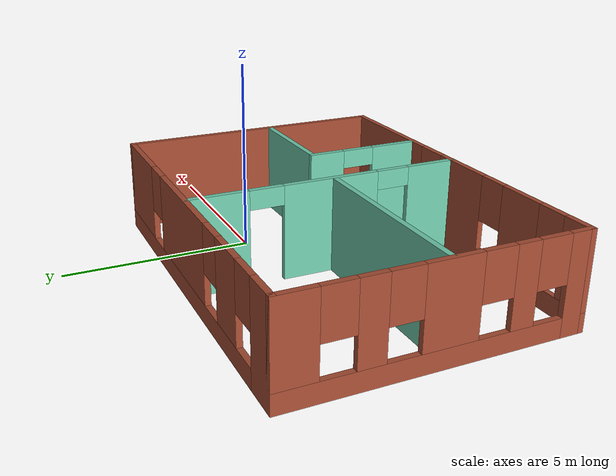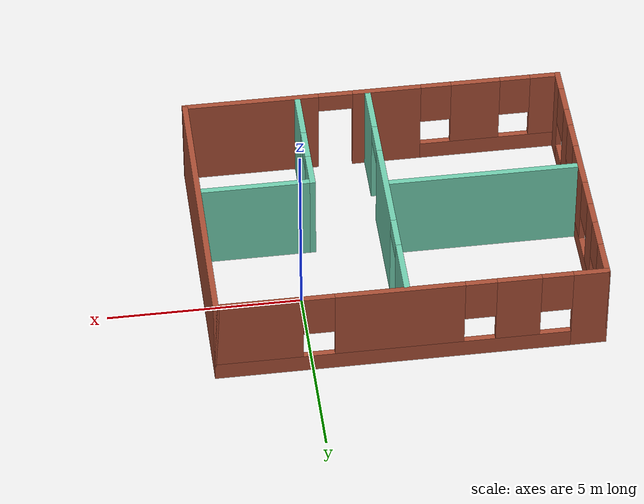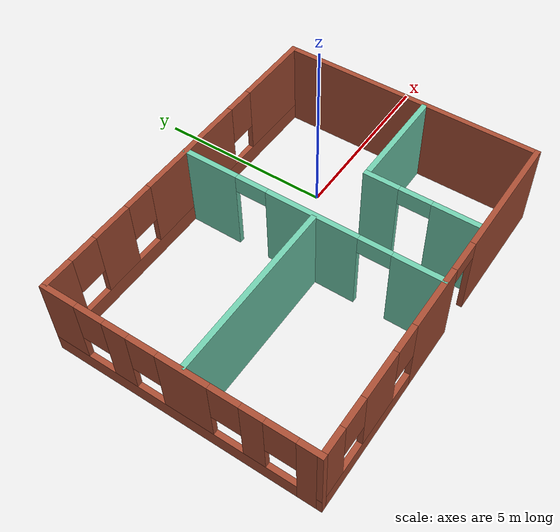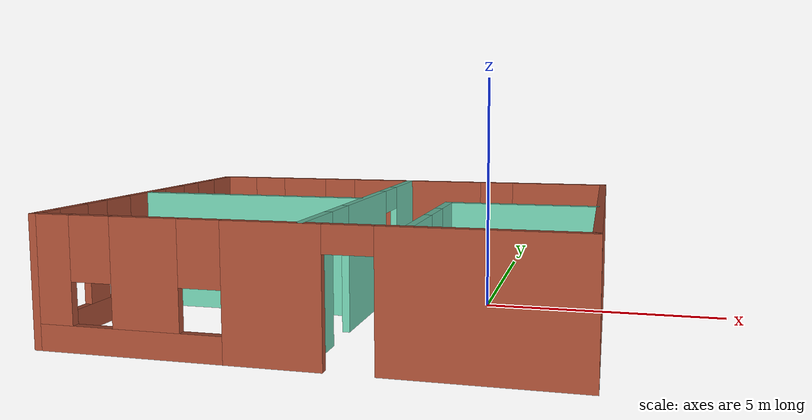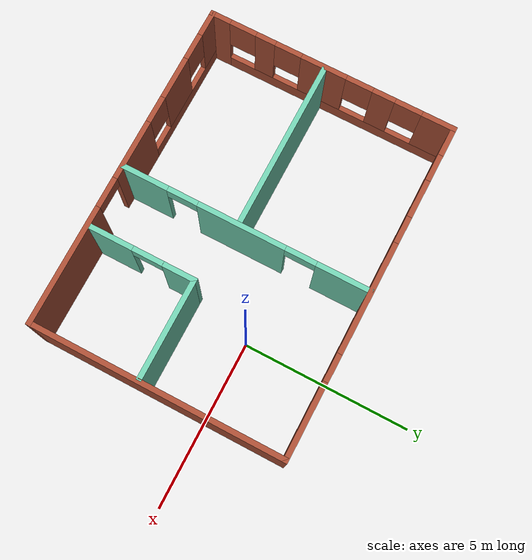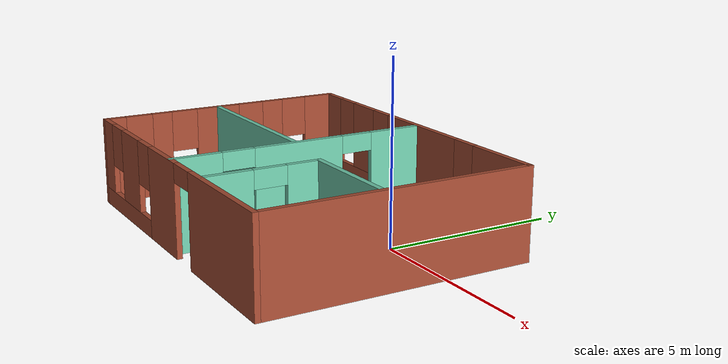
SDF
<?xml version='1.0'?>
<sdf version='1.7'>
  <model name='Untitled'>
    <pose>-2.50372 -1.28209 0 0 -0 0</pose>
    <link name='Wall_10'>
      <collision name='Wall_10_Collision'>
        <geometry>
          <box>
            <size>7.5 0.15 2.5</size>
          </box>
        </geometry>
        <pose>0 0 1.25 0 -0 0</pose>
      </collision>
      <visual name='Wall_10_Visual'>
        <pose>0 0 1.25 0 -0 0</pose>
        <geometry>
          <box>
            <size>7.5 0.15 2.5</size>
          </box>
        </geometry>
        <material>
          <script>
            <uri>file://media/materials/scripts/gazebo.material</uri>
            <name>Gazebo/Bricks</name>
          </script>
          <ambient>1 1 1 1</ambient>
        </material>
        <meta>
          <layer>0</layer>
        </meta>
      </visual>
      <pose>4.925 0 0 0 -0 -1.5708</pose>
    </link>
    <link name='Wall_11'>
      <pose>0 -3.675 0 0 -0 3.14159</pose>
      <visual name='Wall_11_Visual_0'>
        <pose>-3.21126 0 1.25 0 -0 0</pose>
        <geometry>
          <box>
            <size>3.57748 0.15 2.5</size>
          </box>
        </geometry>
        <material>
          <script>
            <uri>file://media/materials/scripts/gazebo.material</uri>
            <name>Gazebo/Bricks</name>
          </script>
          <ambient>1 1 1 1</ambient>
        </material>
        <meta>
          <layer>0</layer>
        </meta>
      </visual>
      <collision name='Wall_11_Collision_0'>
        <geometry>
          <box>
            <size>3.57748 0.15 2.5</size>
          </box>
        </geometry>
        <pose>-3.21126 0 1.25 0 -0 0</pose>
      </collision>
      <visual name='Wall_11_Visual_1'>
        <pose>0.381727 0 1.25 0 -0 0</pose>
        <geometry>
          <box>
            <size>1.80849 0.15 2.5</size>
          </box>
        </geometry>
        <material>
          <script>
            <uri>file://media/materials/scripts/gazebo.material</uri>
            <name>Gazebo/Bricks</name>
          </script>
          <ambient>1 1 1 1</ambient>
        </material>
        <meta>
          <layer>0</layer>
        </meta>
      </visual>
      <collision name='Wall_11_Collision_1'>
        <geometry>
          <box>
            <size>1.80849 0.15 2.5</size>
          </box>
        </geometry>
        <pose>0.381727 0 1.25 0 -0 0</pose>
      </collision>
      <visual name='Wall_11_Visual_2'>
        <pose>3.14299 0 0.25 0 -0 0</pose>
        <geometry>
          <box>
            <size>3.71403 0.15 0.5</size>
          </box>
        </geometry>
        <material>
          <script>
            <uri>file://media/materials/scripts/gazebo.material</uri>
            <name>Gazebo/Bricks</name>
          </script>
          <ambient>1 1 1 1</ambient>
        </material>
        <meta>
          <layer>0</layer>
        </meta>
      </visual>
      <collision name='Wall_11_Collision_2'>
        <geometry>
          <box>
            <size>3.71403 0.15 0.5</size>
          </box>
        </geometry>
        <pose>3.14299 0 0.25 0 -0 0</pose>
      </collision>
      <visual name='Wall_11_Visual_3'>
        <pose>2.73538 0 1.5 0 -0 0</pose>
        <geometry>
          <box>
            <size>1.29881 0.15 2</size>
          </box>
        </geometry>
        <material>
          <script>
            <uri>file://media/materials/scripts/gazebo.material</uri>
            <name>Gazebo/Bricks</name>
          </script>
          <ambient>1 1 1 1</ambient>
        </material>
        <meta>
          <layer>0</layer>
        </meta>
      </visual>
      <collision name='Wall_11_Collision_3'>
        <geometry>
          <box>
            <size>1.29881 0.15 2</size>
          </box>
        </geometry>
        <pose>2.73538 0 1.5 0 -0 0</pose>
      </collision>
      <visual name='Wall_11_Visual_4'>
        <pose>4.59239 0 1.5 0 -0 0</pose>
        <geometry>
          <box>
            <size>0.81522 0.15 2</size>
          </box>
        </geometry>
        <material>
          <script>
            <uri>file://media/materials/scripts/gazebo.material</uri>
            <name>Gazebo/Bricks</name>
          </script>
          <ambient>1 1 1 1</ambient>
        </material>
        <meta>
          <layer>0</layer>
        </meta>
      </visual>
      <collision name='Wall_11_Collision_4'>
        <geometry>
          <box>
            <size>0.81522 0.15 2</size>
          </box>
        </geometry>
        <pose>4.59239 0 1.5 0 -0 0</pose>
      </collision>
      <visual name='Wall_11_Visual_5'>
        <pose>1.68597 0 1.9 0 -0 0</pose>
        <geometry>
          <box>
            <size>0.8 0.15 1.2</size>
          </box>
        </geometry>
        <material>
          <script>
            <uri>file://media/materials/scripts/gazebo.material</uri>
            <name>Gazebo/Bricks</name>
          </script>
          <ambient>1 1 1 1</ambient>
        </material>
        <meta>
          <layer>0</layer>
        </meta>
      </visual>
      <collision name='Wall_11_Collision_5'>
        <geometry>
          <box>
            <size>0.8 0.15 1.2</size>
          </box>
        </geometry>
        <pose>1.68597 0 1.9 0 -0 0</pose>
      </collision>
      <visual name='Wall_11_Visual_6'>
        <pose>3.78478 0 1.9 0 -0 0</pose>
        <geometry>
          <box>
            <size>0.8 0.15 1.2</size>
          </box>
        </geometry>
        <material>
          <script>
            <uri>file://media/materials/scripts/gazebo.material</uri>
            <name>Gazebo/Bricks</name>
          </script>
          <ambient>1 1 1 1</ambient>
        </material>
        <meta>
          <layer>0</layer>
        </meta>
      </visual>
      <collision name='Wall_11_Collision_6'>
        <geometry>
          <box>
            <size>0.8 0.15 1.2</size>
          </box>
        </geometry>
        <pose>3.78478 0 1.9 0 -0 0</pose>
      </collision>
      <visual name='Wall_11_Visual_7'>
        <pose>-0.972518 0 2.25 0 -0 0</pose>
        <geometry>
          <box>
            <size>0.9 0.15 0.5</size>
          </box>
        </geometry>
        <material>
          <script>
            <uri>file://media/materials/scripts/gazebo.material</uri>
            <name>Gazebo/Bricks</name>
          </script>
          <ambient>1 1 1 1</ambient>
        </material>
        <meta>
          <layer>0</layer>
        </meta>
      </visual>
      <collision name='Wall_11_Collision_7'>
        <geometry>
          <box>
            <size>0.9 0.15 0.5</size>
          </box>
        </geometry>
        <pose>-0.972518 0 2.25 0 -0 0</pose>
      </collision>
    </link>
    <link name='Wall_12'>
      <pose>-4.925 0 0 0 -0 1.5708</pose>
      <visual name='Wall_12_Visual_0'>
        <pose>-3.42666 0 1.25 0 -0 0</pose>
        <geometry>
          <box>
            <size>0.646687 0.15 2.5</size>
          </box>
        </geometry>
        <material>
          <script>
            <uri>file://media/materials/scripts/gazebo.material</uri>
            <name>Gazebo/Bricks</name>
          </script>
          <ambient>1 1 1 1</ambient>
        </material>
        <meta>
          <layer>0</layer>
        </meta>
      </visual>
      <collision name='Wall_12_Collision_0'>
        <geometry>
          <box>
            <size>0.646687 0.15 2.5</size>
          </box>
        </geometry>
        <pose>-3.42666 0 1.25 0 -0 0</pose>
      </collision>
      <visual name='Wall_12_Visual_1'>
        <pose>0.323343 0 0.25 0 -0 0</pose>
        <geometry>
          <box>
            <size>6.85331 0.15 0.5</size>
          </box>
        </geometry>
        <material>
          <script>
            <uri>file://media/materials/scripts/gazebo.material</uri>
            <name>Gazebo/Bricks</name>
          </script>
          <ambient>1 1 1 1</ambient>
        </material>
        <meta>
          <layer>0</layer>
        </meta>
      </visual>
      <collision name='Wall_12_Collision_1'>
        <geometry>
          <box>
            <size>6.85331 0.15 0.5</size>
          </box>
        </geometry>
        <pose>0.323343 0 0.25 0 -0 0</pose>
      </collision>
      <visual name='Wall_12_Visual_2'>
        <pose>-2.00371 0 1.5 0 -0 0</pose>
        <geometry>
          <box>
            <size>0.599205 0.15 2</size>
          </box>
        </geometry>
        <material>
          <script>
            <uri>file://media/materials/scripts/gazebo.material</uri>
            <name>Gazebo/Bricks</name>
          </script>
          <ambient>1 1 1 1</ambient>
        </material>
        <meta>
          <layer>0</layer>
        </meta>
      </visual>
      <collision name='Wall_12_Collision_2'>
        <geometry>
          <box>
            <size>0.599205 0.15 2</size>
          </box>
        </geometry>
        <pose>-2.00371 0 1.5 0 -0 0</pose>
      </collision>
      <visual name='Wall_12_Visual_3'>
        <pose>-0.219724 0 1.5 0 -0 0</pose>
        <geometry>
          <box>
            <size>1.36877 0.15 2</size>
          </box>
        </geometry>
        <material>
          <script>
            <uri>file://media/materials/scripts/gazebo.material</uri>
            <name>Gazebo/Bricks</name>
          </script>
          <ambient>1 1 1 1</ambient>
        </material>
        <meta>
          <layer>0</layer>
        </meta>
      </visual>
      <collision name='Wall_12_Collision_3'>
        <geometry>
          <box>
            <size>1.36877 0.15 2</size>
          </box>
        </geometry>
        <pose>-0.219724 0 1.5 0 -0 0</pose>
      </collision>
      <visual name='Wall_12_Visual_4'>
        <pose>1.59924 0 1.5 0 -0 0</pose>
        <geometry>
          <box>
            <size>0.669165 0.15 2</size>
          </box>
        </geometry>
        <material>
          <script>
            <uri>file://media/materials/scripts/gazebo.material</uri>
            <name>Gazebo/Bricks</name>
          </script>
          <ambient>1 1 1 1</ambient>
        </material>
        <meta>
          <layer>0</layer>
        </meta>
      </visual>
      <collision name='Wall_12_Collision_4'>
        <geometry>
          <box>
            <size>0.669165 0.15 2</size>
          </box>
        </geometry>
        <pose>1.59924 0 1.5 0 -0 0</pose>
      </collision>
      <visual name='Wall_12_Visual_5'>
        <pose>3.24191 0 1.5 0 -0 0</pose>
        <geometry>
          <box>
            <size>1.01618 0.15 2</size>
          </box>
        </geometry>
        <material>
          <script>
            <uri>file://media/materials/scripts/gazebo.material</uri>
            <name>Gazebo/Bricks</name>
          </script>
          <ambient>1 1 1 1</ambient>
        </material>
        <meta>
          <layer>0</layer>
        </meta>
      </visual>
      <collision name='Wall_12_Collision_5'>
        <geometry>
          <box>
            <size>1.01618 0.15 2</size>
          </box>
        </geometry>
        <pose>3.24191 0 1.5 0 -0 0</pose>
      </collision>
      <visual name='Wall_12_Visual_6'>
        <pose>-2.70331 0 1.9 0 -0 0</pose>
        <geometry>
          <box>
            <size>0.8 0.15 1.2</size>
          </box>
        </geometry>
        <material>
          <script>
            <uri>file://media/materials/scripts/gazebo.material</uri>
            <name>Gazebo/Bricks</name>
          </script>
          <ambient>1 1 1 1</ambient>
        </material>
        <meta>
          <layer>0</layer>
        </meta>
      </visual>
      <collision name='Wall_12_Collision_6'>
        <geometry>
          <box>
            <size>0.8 0.15 1.2</size>
          </box>
        </geometry>
        <pose>-2.70331 0 1.9 0 -0 0</pose>
      </collision>
      <visual name='Wall_12_Visual_7'>
        <pose>-1.30411 0 1.9 0 -0 0</pose>
        <geometry>
          <box>
            <size>0.8 0.15 1.2</size>
          </box>
        </geometry>
        <material>
          <script>
            <uri>file://media/materials/scripts/gazebo.material</uri>
            <name>Gazebo/Bricks</name>
          </script>
          <ambient>1 1 1 1</ambient>
        </material>
        <meta>
          <layer>0</layer>
        </meta>
      </visual>
      <collision name='Wall_12_Collision_7'>
        <geometry>
          <box>
            <size>0.8 0.15 1.2</size>
          </box>
        </geometry>
        <pose>-1.30411 0 1.9 0 -0 0</pose>
      </collision>
      <visual name='Wall_12_Visual_8'>
        <pose>0.864659 0 1.9 0 -0 0</pose>
        <geometry>
          <box>
            <size>0.8 0.15 1.2</size>
          </box>
        </geometry>
        <material>
          <script>
            <uri>file://media/materials/scripts/gazebo.material</uri>
            <name>Gazebo/Bricks</name>
          </script>
          <ambient>1 1 1 1</ambient>
        </material>
        <meta>
          <layer>0</layer>
        </meta>
      </visual>
      <collision name='Wall_12_Collision_8'>
        <geometry>
          <box>
            <size>0.8 0.15 1.2</size>
          </box>
        </geometry>
        <pose>0.864659 0 1.9 0 -0 0</pose>
      </collision>
      <visual name='Wall_12_Visual_9'>
        <pose>2.33383 0 1.9 0 -0 0</pose>
        <geometry>
          <box>
            <size>0.8 0.15 1.2</size>
          </box>
        </geometry>
        <material>
          <script>
            <uri>file://media/materials/scripts/gazebo.material</uri>
            <name>Gazebo/Bricks</name>
          </script>
          <ambient>1 1 1 1</ambient>
        </material>
        <meta>
          <layer>0</layer>
        </meta>
      </visual>
      <collision name='Wall_12_Collision_9'>
        <geometry>
          <box>
            <size>0.8 0.15 1.2</size>
          </box>
        </geometry>
        <pose>2.33383 0 1.9 0 -0 0</pose>
      </collision>
    </link>
    <link name='Wall_14'>
      <pose>0.124715 -0.005905 0 0 -0 -1.5708</pose>
      <visual name='Wall_14_Visual_0'>
        <pose>-2.91416 0 1.25 0 -0 0</pose>
        <geometry>
          <box>
            <size>1.62168 0.15 2.5</size>
          </box>
        </geometry>
        <material>
          <script>
            <uri>file://media/materials/scripts/gazebo.material</uri>
            <name>Gazebo/Grey</name>
          </script>
          <ambient>0.435294 0.796078 0.67451 1</ambient>
        </material>
        <meta>
          <layer>0</layer>
        </meta>
      </visual>
      <collision name='Wall_14_Collision_0'>
        <geometry>
          <box>
            <size>1.62168 0.15 2.5</size>
          </box>
        </geometry>
        <pose>-2.91416 0 1.25 0 -0 0</pose>
      </collision>
      <visual name='Wall_14_Visual_1'>
        <pose>0.095373 0 1.25 0 -0 0</pose>
        <geometry>
          <box>
            <size>2.59738 0.15 2.5</size>
          </box>
        </geometry>
        <material>
          <script>
            <uri>file://media/materials/scripts/gazebo.material</uri>
            <name>Gazebo/Grey</name>
          </script>
          <ambient>0.435294 0.796078 0.67451 1</ambient>
        </material>
        <meta>
          <layer>0</layer>
        </meta>
      </visual>
      <collision name='Wall_14_Collision_1'>
        <geometry>
          <box>
            <size>2.59738 0.15 2.5</size>
          </box>
        </geometry>
        <pose>0.095373 0 1.25 0 -0 0</pose>
      </collision>
      <visual name='Wall_14_Visual_2'>
        <pose>3.00953 0 1.25 0 -0 0</pose>
        <geometry>
          <box>
            <size>1.43094 0.15 2.5</size>
          </box>
        </geometry>
        <material>
          <script>
            <uri>file://media/materials/scripts/gazebo.material</uri>
            <name>Gazebo/Grey</name>
          </script>
          <ambient>0.435294 0.796078 0.67451 1</ambient>
        </material>
        <meta>
          <layer>0</layer>
        </meta>
      </visual>
      <collision name='Wall_14_Collision_2'>
        <geometry>
          <box>
            <size>1.43094 0.15 2.5</size>
          </box>
        </geometry>
        <pose>3.00953 0 1.25 0 -0 0</pose>
      </collision>
      <visual name='Wall_14_Visual_3'>
        <pose>-1.65332 0 2.25 0 -0 0</pose>
        <geometry>
          <box>
            <size>0.9 0.15 0.5</size>
          </box>
        </geometry>
        <material>
          <script>
            <uri>file://media/materials/scripts/gazebo.material</uri>
            <name>Gazebo/Grey</name>
          </script>
          <ambient>0.435294 0.796078 0.67451 1</ambient>
        </material>
        <meta>
          <layer>0</layer>
        </meta>
      </visual>
      <collision name='Wall_14_Collision_3'>
        <geometry>
          <box>
            <size>0.9 0.15 0.5</size>
          </box>
        </geometry>
        <pose>-1.65332 0 2.25 0 -0 0</pose>
      </collision>
      <visual name='Wall_14_Visual_4'>
        <pose>1.84406 0 2.25 0 -0 0</pose>
        <geometry>
          <box>
            <size>0.9 0.15 0.5</size>
          </box>
        </geometry>
        <material>
          <script>
            <uri>file://media/materials/scripts/gazebo.material</uri>
            <name>Gazebo/Grey</name>
          </script>
          <ambient>0.435294 0.796078 0.67451 1</ambient>
        </material>
        <meta>
          <layer>0</layer>
        </meta>
      </visual>
      <collision name='Wall_14_Collision_4'>
        <geometry>
          <box>
            <size>0.9 0.15 0.5</size>
          </box>
        </geometry>
        <pose>1.84406 0 2.25 0 -0 0</pose>
      </collision>
    </link>
    <link name='Wall_16'>
      <collision name='Wall_16_Collision'>
        <geometry>
          <box>
            <size>5 0.15 2.5</size>
          </box>
        </geometry>
        <pose>0 0 1.25 0 -0 0</pose>
      </collision>
      <visual name='Wall_16_Visual'>
        <pose>0 0 1.25 0 -0 0</pose>
        <geometry>
          <box>
            <size>5 0.15 2.5</size>
          </box>
        </geometry>
        <material>
          <script>
            <uri>file://media/materials/scripts/gazebo.material</uri>
            <name>Gazebo/Grey</name>
          </script>
          <ambient>0.435294 0.796078 0.67451 1</ambient>
        </material>
        <meta>
          <layer>0</layer>
        </meta>
      </visual>
      <pose>-2.40875 -0.188022 0 0 -0 0</pose>
    </link>
    <link name='Wall_18'>
      <pose>1.97977 -2.04478 0 0 -0 1.5708</pose>
      <visual name='Wall_18_Visual_0'>
        <pose>-0.947004 0 1.25 0 -0 0</pose>
        <geometry>
          <box>
            <size>1.35599 0.15 2.5</size>
          </box>
        </geometry>
        <material>
          <script>
            <uri>file://media/materials/scripts/gazebo.material</uri>
            <name>Gazebo/Grey</name>
          </script>
          <ambient>0.435294 0.796078 0.67451 1</ambient>
        </material>
        <meta>
          <layer>0</layer>
        </meta>
      </visual>
      <collision name='Wall_18_Collision_0'>
        <geometry>
          <box>
            <size>1.35599 0.15 2.5</size>
          </box>
        </geometry>
        <pose>-0.947004 0 1.25 0 -0 0</pose>
      </collision>
      <visual name='Wall_18_Visual_1'>
        <pose>1.128 0 1.25 0 -0 0</pose>
        <geometry>
          <box>
            <size>0.994008 0.15 2.5</size>
          </box>
        </geometry>
        <material>
          <script>
            <uri>file://media/materials/scripts/gazebo.material</uri>
            <name>Gazebo/Grey</name>
          </script>
          <ambient>0.435294 0.796078 0.67451 1</ambient>
        </material>
        <meta>
          <layer>0</layer>
        </meta>
      </visual>
      <collision name='Wall_18_Collision_1'>
        <geometry>
          <box>
            <size>0.994008 0.15 2.5</size>
          </box>
        </geometry>
        <pose>1.128 0 1.25 0 -0 0</pose>
      </collision>
      <visual name='Wall_18_Visual_2'>
        <pose>0.180992 0 2.25 0 -0 0</pose>
        <geometry>
          <box>
            <size>0.9 0.15 0.5</size>
          </box>
        </geometry>
        <material>
          <script>
            <uri>file://media/materials/scripts/gazebo.material</uri>
            <name>Gazebo/Grey</name>
          </script>
          <ambient>0.435294 0.796078 0.67451 1</ambient>
        </material>
        <meta>
          <layer>0</layer>
        </meta>
      </visual>
      <collision name='Wall_18_Collision_2'>
        <geometry>
          <box>
            <size>0.9 0.15 0.5</size>
          </box>
        </geometry>
        <pose>0.180992 0 2.25 0 -0 0</pose>
      </collision>
    </link>
    <link name='Wall_19'>
      <collision name='Wall_19_Collision'>
        <geometry>
          <box>
            <size>3 0.15 2.5</size>
          </box>
        </geometry>
        <pose>0 0 1.25 0 -0 0</pose>
      </collision>
      <visual name='Wall_19_Visual'>
        <pose>0 0 1.25 0 -0 0</pose>
        <geometry>
          <box>
            <size>3 0.15 2.5</size>
          </box>
        </geometry>
        <material>
          <script>
            <uri>file://media/materials/scripts/gazebo.material</uri>
            <name>Gazebo/Grey</name>
          </script>
          <ambient>0.435294 0.796078 0.67451 1</ambient>
        </material>
        <meta>
          <layer>0</layer>
        </meta>
      </visual>
      <pose>3.40477 -0.494783 0 0 -0 0</pose>
    </link>
    <link name='Wall_9'>
      <pose>0 3.675 0 0 -0 0</pose>
      <visual name='Wall_9_Visual_0'>
        <pose>-4.53724 0 1.25 0 -0 0</pose>
        <geometry>
          <box>
            <size>0.925521 0.15 2.5</size>
          </box>
        </geometry>
        <material>
          <script>
            <uri>file://media/materials/scripts/gazebo.material</uri>
            <name>Gazebo/Bricks</name>
          </script>
          <ambient>1 1 1 1</ambient>
        </material>
        <meta>
          <layer>0</layer>
        </meta>
      </visual>
      <collision name='Wall_9_Collision_0'>
        <geometry>
          <box>
            <size>0.925521 0.15 2.5</size>
          </box>
        </geometry>
        <pose>-4.53724 0 1.25 0 -0 0</pose>
      </collision>
      <visual name='Wall_9_Visual_1'>
        <pose>0.46276 0 0.25 0 -0 0</pose>
        <geometry>
          <box>
            <size>9.07448 0.15 0.5</size>
          </box>
        </geometry>
        <material>
          <script>
            <uri>file://media/materials/scripts/gazebo.material</uri>
            <name>Gazebo/Bricks</name>
          </script>
          <ambient>1 1 1 1</ambient>
        </material>
        <meta>
          <layer>0</layer>
        </meta>
      </visual>
      <collision name='Wall_9_Collision_1'>
        <geometry>
          <box>
            <size>9.07448 0.15 0.5</size>
          </box>
        </geometry>
        <pose>0.46276 0 0.25 0 -0 0</pose>
      </collision>
      <visual name='Wall_9_Visual_2'>
        <pose>-2.70619 0 1.5 0 -0 0</pose>
        <geometry>
          <box>
            <size>1.13658 0.15 2</size>
          </box>
        </geometry>
        <material>
          <script>
            <uri>file://media/materials/scripts/gazebo.material</uri>
            <name>Gazebo/Bricks</name>
          </script>
          <ambient>1 1 1 1</ambient>
        </material>
        <meta>
          <layer>0</layer>
        </meta>
      </visual>
      <collision name='Wall_9_Collision_2'>
        <geometry>
          <box>
            <size>1.13658 0.15 2</size>
          </box>
        </geometry>
        <pose>-2.70619 0 1.5 0 -0 0</pose>
      </collision>
      <visual name='Wall_9_Visual_3'>
        <pose>0.305252 0 1.5 0 -0 0</pose>
        <geometry>
          <box>
            <size>3.2863 0.15 2</size>
          </box>
        </geometry>
        <material>
          <script>
            <uri>file://media/materials/scripts/gazebo.material</uri>
            <name>Gazebo/Bricks</name>
          </script>
          <ambient>1 1 1 1</ambient>
        </material>
        <meta>
          <layer>0</layer>
        </meta>
      </visual>
      <collision name='Wall_9_Collision_3'>
        <geometry>
          <box>
            <size>3.2863 0.15 2</size>
          </box>
        </geometry>
        <pose>0.305252 0 1.5 0 -0 0</pose>
      </collision>
      <visual name='Wall_9_Visual_4'>
        <pose>3.8742 0 1.5 0 -0 0</pose>
        <geometry>
          <box>
            <size>2.2516 0.15 2</size>
          </box>
        </geometry>
        <material>
          <script>
            <uri>file://media/materials/scripts/gazebo.material</uri>
            <name>Gazebo/Bricks</name>
          </script>
          <ambient>1 1 1 1</ambient>
        </material>
        <meta>
          <layer>0</layer>
        </meta>
      </visual>
      <collision name='Wall_9_Collision_4'>
        <geometry>
          <box>
            <size>2.2516 0.15 2</size>
          </box>
        </geometry>
        <pose>3.8742 0 1.5 0 -0 0</pose>
      </collision>
      <visual name='Wall_9_Visual_5'>
        <pose>-3.67448 0 1.9 0 -0 0</pose>
        <geometry>
          <box>
            <size>0.8 0.15 1.2</size>
          </box>
        </geometry>
        <material>
          <script>
            <uri>file://media/materials/scripts/gazebo.material</uri>
            <name>Gazebo/Bricks</name>
          </script>
          <ambient>1 1 1 1</ambient>
        </material>
        <meta>
          <layer>0</layer>
        </meta>
      </visual>
      <collision name='Wall_9_Collision_5'>
        <geometry>
          <box>
            <size>0.8 0.15 1.2</size>
          </box>
        </geometry>
        <pose>-3.67448 0 1.9 0 -0 0</pose>
      </collision>
      <visual name='Wall_9_Visual_6'>
        <pose>-1.7379 0 1.9 0 -0 0</pose>
        <geometry>
          <box>
            <size>0.8 0.15 1.2</size>
          </box>
        </geometry>
        <material>
          <script>
            <uri>file://media/materials/scripts/gazebo.material</uri>
            <name>Gazebo/Bricks</name>
          </script>
          <ambient>1 1 1 1</ambient>
        </material>
        <meta>
          <layer>0</layer>
        </meta>
      </visual>
      <collision name='Wall_9_Collision_6'>
        <geometry>
          <box>
            <size>0.8 0.15 1.2</size>
          </box>
        </geometry>
        <pose>-1.7379 0 1.9 0 -0 0</pose>
      </collision>
      <visual name='Wall_9_Visual_7'>
        <pose>2.3484 0 1.9 0 -0 0</pose>
        <geometry>
          <box>
            <size>0.8 0.15 1.2</size>
          </box>
        </geometry>
        <material>
          <script>
            <uri>file://media/materials/scripts/gazebo.material</uri>
            <name>Gazebo/Bricks</name>
          </script>
          <ambient>1 1 1 1</ambient>
        </material>
        <meta>
          <layer>0</layer>
        </meta>
      </visual>
      <collision name='Wall_9_Collision_7'>
        <geometry>
          <box>
            <size>0.8 0.15 1.2</size>
          </box>
        </geometry>
        <pose>2.3484 0 1.9 0 -0 0</pose>
      </collision>
    </link>
    <static>1</static>
  </model>
</sdf>
